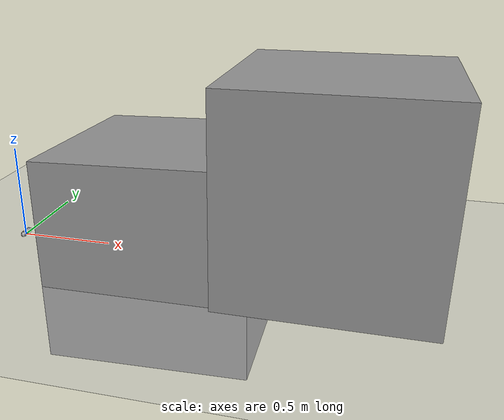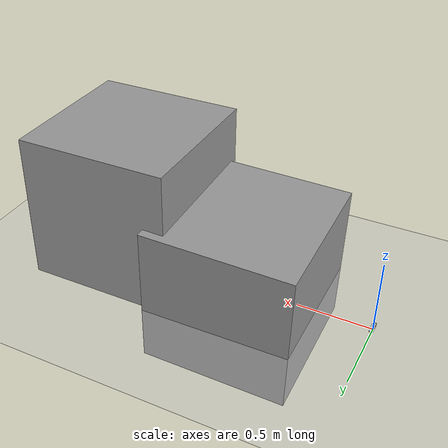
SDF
<sdf version="1.7">
 <world name="default">
  <light name="sun" type="directional">
   <pose>0 0 10 0 -0 0</pose>
   <diffuse>0.8 0.8 0.8 1</diffuse>
   <specular>0.2 0.2 0.2 1</specular>
   <attenuation>
    <range>1000</range>
    <constant>0.9</constant>
    <linear>0.01</linear>
    <quadratic>0.001</quadratic>
   </attenuation>
   <direction>-0.5 0.1 -0.9</direction>
   <spot><inner_angle>0</inner_angle><outer_angle>0</outer_angle><falloff>0</falloff></spot>
  </light>
  <model name="ground_plane">
   <static>1</static>
   <link name="link">
    <collision name="collision">
     <geometry><plane><normal>0 0 1</normal><size>100 100</size></plane></geometry>
     <surface>
      <contact><collide_bitmask>65535</collide_bitmask></contact>
      <friction><ode><mu>100</mu><mu2>50</mu2></ode></friction>
     </surface>
    </collision>
    <visual name="visual">
     <cast_shadows>0</cast_shadows>
     <geometry><plane><normal>0 0 1</normal><size>100 100</size></plane></geometry>
     <material>
      <script><uri>file://media/materials/scripts/gazebo.material</uri><name>Gazebo/Grey</name></script>
     </material>
    </visual>
   </link>
  </model>
  <gravity>0 0 0</gravity>
  <magnetic_field>6e-06 2.3e-05 -4.2e-05</magnetic_field>
  <atmosphere type="adiabatic"/>
  <physics type="ode">
   <max_step_size>0.01</max_step_size>
   <real_time_factor>1</real_time_factor>
   <real_time_update_rate>100</real_time_update_rate>
  </physics>
  <scene><ambient>0.4 0.4 0.4 1</ambient><background>0.7 0.7 0.7 1</background><shadows>1</shadows></scene>
  <spherical_coordinates>
   <surface_model>EARTH_WGS84</surface_model>
   <latitude_deg>0</latitude_deg>
   <longitude_deg>0</longitude_deg>
   <elevation>0</elevation>
   <heading_deg>0</heading_deg>
  </spherical_coordinates>
  <model name="robot">
   <link name="base_link">
    <inertial>
     <pose>0 0.0175 0.0125 0 -0 0</pose>
     <mass>0.564</mass>
     <inertia>
      <ixx>0.00388124</ixx>
      <ixy>0</ixy>
      <ixz>0</ixz>
      <iyy>0.00049894</iyy>
      <iyz>0</iyz>
      <izz>0.00387926</izz>
     </inertia>
    </inertial>
    <collision name="base_link_fixed_joint_lump__camera_link_collision">
     <pose>0 0 0.0125 0 -0 0</pose>
     <geometry><box><size>0.02505 0.09 0.025</size></box></geometry>
     <surface>
      <contact><ode><kp>1e+13</kp><kd>1</kd></ode></contact>
      <friction><ode><mu2>1</mu2><fdir1>0 0 0</fdir1></ode></friction>
     </surface>
    </collision>
    <visual name="base_link_fixed_joint_lump__camera_link_visual">
     <pose>0.0149 0 0.0125 1.5708 -0 1.5708</pose>
     <geometry>
      <mesh><scale>1 1 1</scale><uri>/home/dinvincible98/ws1/src/realsense2_description/meshes/d435.dae</uri></mesh>
     </geometry>
    </visual>
    <sensor name="cameracolor" type="camera">
     <camera name="camera">
      <horizontal_fov>1.21126</horizontal_fov>
      <image><width>640</width><height>480</height><format>RGB_INT8</format></image>
      <clip><near>0.1</near><far>100</far></clip>
      <noise><type>gaussian</type><mean>0</mean><stddev>0.007</stddev></noise>
     </camera>
     <always_on>1</always_on>
     <update_rate>30</update_rate>
     <visualize>1</visualize>
     <pose>0 0.0175 0.0125 0 -0 0</pose>
    </sensor>
    <sensor name="cameraired1" type="camera">
     <camera name="camera">
      <horizontal_fov>1.48702</horizontal_fov>
      <image><width>1280</width><height>720</height><format>L_INT8</format></image>
      <clip><near>0.1</near><far>100</far></clip>
      <noise><type>gaussian</type><mean>0</mean><stddev>0.05</stddev></noise>
     </camera>
     <always_on>1</always_on>
     <update_rate>90</update_rate>
     <visualize>0</visualize>
     <pose>0 0.0175 0.0125 0 -0 0</pose>
    </sensor>
    <sensor name="cameraired2" type="camera">
     <camera name="camera">
      <horizontal_fov>1.48702</horizontal_fov>
      <image><width>1280</width><height>720</height><format>L_INT8</format></image>
      <clip><near>0.1</near><far>100</far></clip>
      <noise><type>gaussian</type><mean>0</mean><stddev>0.05</stddev></noise>
     </camera>
     <always_on>1</always_on>
     <update_rate>90</update_rate>
     <visualize>0</visualize>
     <pose>0 0.0175 0.0125 0 -0 0</pose>
    </sensor>
    <sensor name="cameradepth" type="depth">
     <camera name="camera">
      <horizontal_fov>1.48702</horizontal_fov>
      <image><width>1280</width><height>720</height></image>
      <clip><near>0.1</near><far>100</far></clip>
      <noise><type>gaussian</type><mean>0</mean><stddev>0.1</stddev></noise>
     </camera>
     <always_on>1</always_on>
     <update_rate>90</update_rate>
     <visualize>0</visualize>
     <pose>0 0.0175 0.0125 0 -0 0</pose>
    </sensor>
   </link>
   <static>0</static>
   <plugin name="camera" filename="librealsense_gazebo_plugin.so">
    <prefix>camera</prefix>
    <depthUpdateRate>30.0</depthUpdateRate>
    <colorUpdateRate>30.0</colorUpdateRate>
    <infraredUpdateRate>30.0</infraredUpdateRate>
    <depthTopicName>depth/image_raw</depthTopicName>
    <depthCameraInfoTopicName>depth/camera_info</depthCameraInfoTopicName>
    <colorTopicName>color/image_raw</colorTopicName>
    <colorCameraInfoTopicName>color/camera_info</colorCameraInfoTopicName>
    <infrared1TopicName>infra1/image_raw</infrared1TopicName>
    <infrared1CameraInfoTopicName>infra1/camera_info</infrared1CameraInfoTopicName>
    <infrared2TopicName>infra2/image_raw</infrared2TopicName>
    <infrared2CameraInfoTopicName>infra2/camera_info</infrared2CameraInfoTopicName>
    <colorOpticalframeName>camera_color_optical_frame</colorOpticalframeName>
    <depthOpticalframeName>camera_depth_optical_frame</depthOpticalframeName>
    <infrared1OpticalframeName>camera_left_ir_optical_frame</infrared1OpticalframeName>
    <infrared2OpticalframeName>camera_right_ir_optical_frame</infrared2OpticalframeName>
    <rangeMinDepth>0.2</rangeMinDepth>
    <rangeMaxDepth>10.0</rangeMaxDepth>
    <pointCloud>1</pointCloud>
    <pointCloudTopicName>depth/color/points</pointCloudTopicName>
    <pointCloudCutoff>0.25</pointCloudCutoff>
    <pointCloudCutoffMax>9.0</pointCloudCutoffMax>
    <robotNamespace>/</robotNamespace>
   </plugin>
  </model>
  <model name="unit_box">
   <pose>0.873541 -0.000481 0.111234 -0.022956 0.037164 1.58207</pose>
   <link name="unit_box::link">
    <inertial>
     <mass>1</mass>
     <inertia>
      <ixx>0.166667</ixx>
      <ixy>0</ixy>
      <ixz>0</ixz>
      <iyy>0.166667</iyy>
      <iyz>0</iyz>
      <izz>0.166667</izz>
     </inertia>
    </inertial>
    <collision name="collision">
     <geometry><box><size>0.699993 0.699999 0.700026</size></box></geometry>
    </collision>
    <visual name="visual">
     <geometry><box><size>0.99997 1 1.00002</size></box></geometry>
     <material>
      <script><name>Gazebo/Grey</name><uri>file://media/materials/scripts/gazebo.material</uri></script>
     </material>
    </visual>
   </link>
  </model>
  <model name="unit_box_0">
   <pose>1.71557 -0.035064 0.5 0 -0 0</pose>
   <link name="link">
    <inertial>
     <mass>1</mass>
     <inertia>
      <ixx>0.166667</ixx>
      <ixy>0</ixy>
      <ixz>0</ixz>
      <iyy>0.166667</iyy>
      <iyz>0</iyz>
      <izz>0.166667</izz>
     </inertia>
    </inertial>
    <collision name="collision"><geometry><box><size>1 1 1</size></box></geometry></collision>
    <visual name="visual">
     <geometry><box><size>1 1 1</size></box></geometry>
     <material>
      <script><name>Gazebo/Grey</name><uri>file://media/materials/scripts/gazebo.material</uri></script>
     </material>
    </visual>
   </link>
  </model>
 </world>
</sdf>
